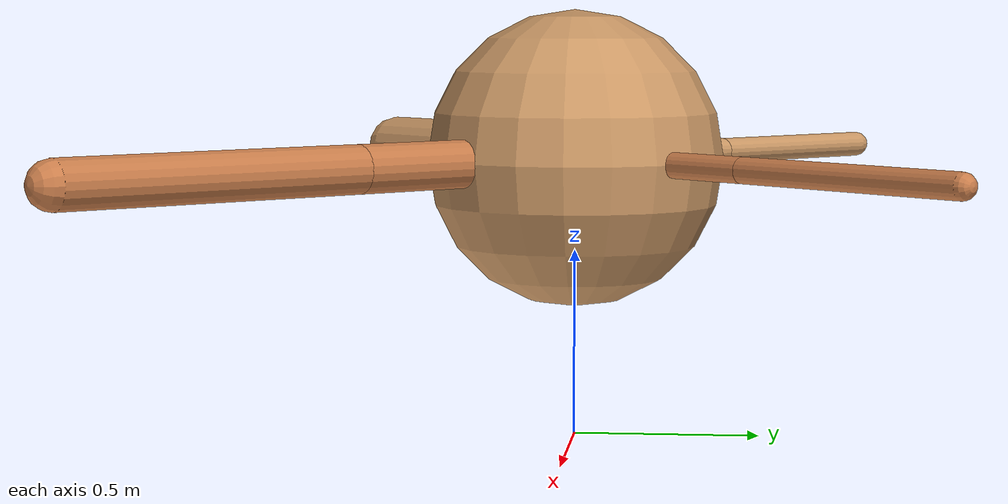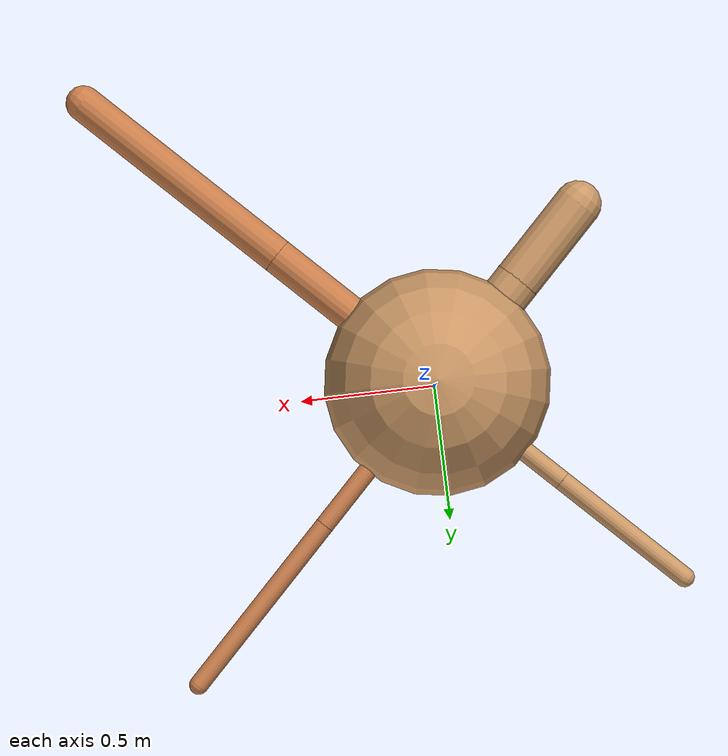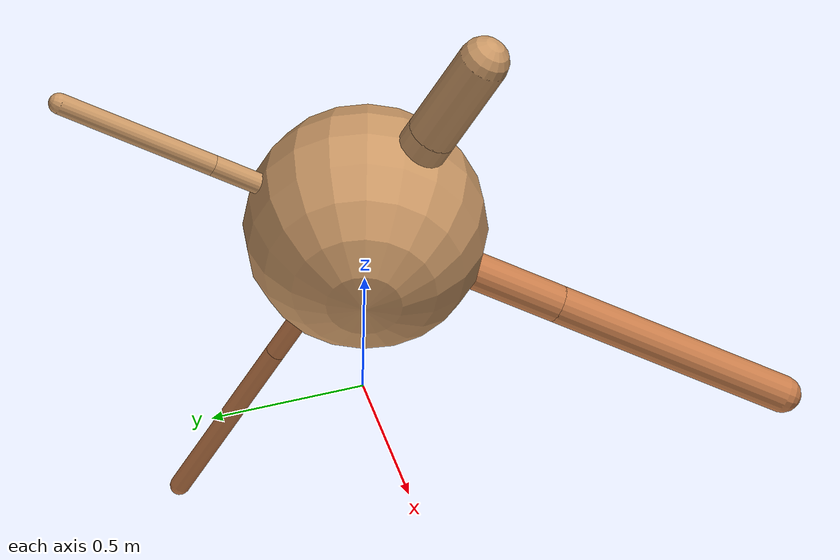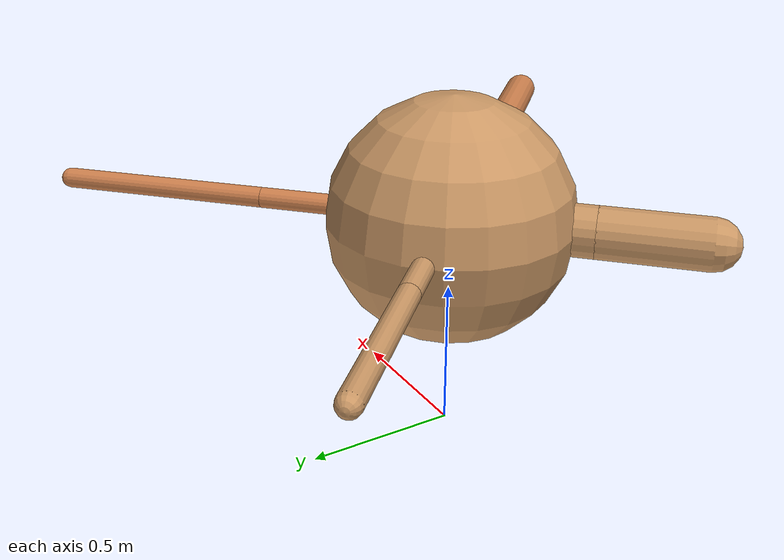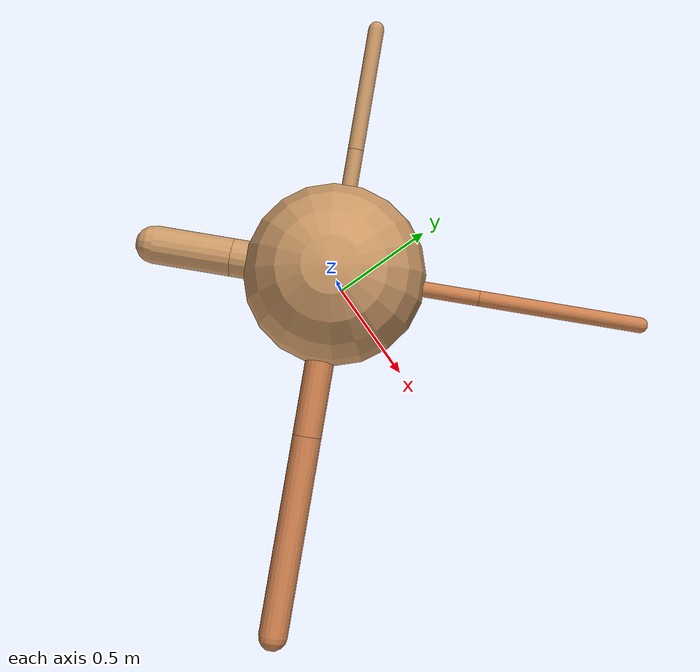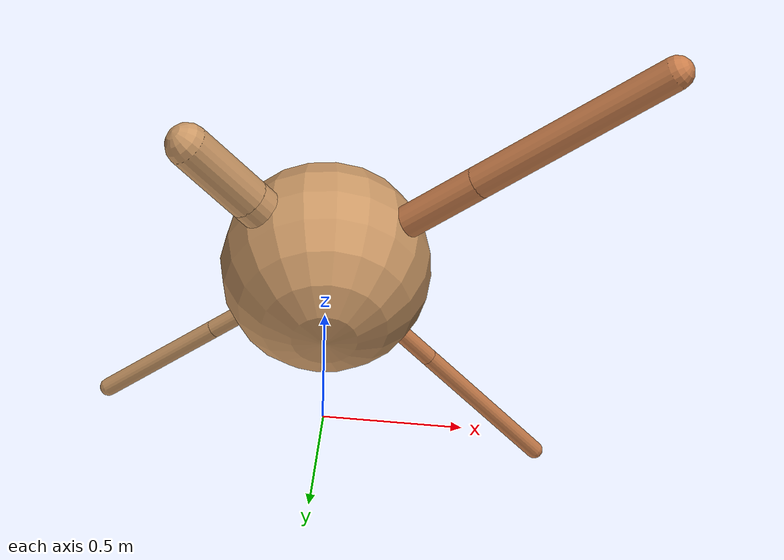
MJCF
<?xml version="1.0" ?>
<mujoco model="ant">

	<compiler angle="degree" coordinate="local" inertiafromgeom="true"/>

	<option integrator="RK4" timestep="0.01"/>

	<custom>

		<numeric data="0.0 0.0 0.55 1.0 0.0 0.0 0.0 0.0 1.0 0.0 -1.0 0.0 -1.0 0.0 1.0" name="init_qpos"/>

	</custom>

	<default>

		<joint armature="1" damping="1" limited="true"/>

		<geom conaffinity="0" condim="3" density="5.0" friction="1.5 0.1 0.1" margin="0.01" rgba="0.8 0.6 0.4 1"/>

	</default>

	<worldbody>

		<body name="torso" pos="0 0 0.75">

			<geom name="torso_geom" pos="0 0 0" size="0.40082405932974385" type="sphere"/>

			<!--joint armature="0" damping="0" limited="false" margin="0.01" name="root" pos="0 0 0" type="free"/-->

			<body name="front_left_leg" pos="0 0 0">

				<geom fromto="0 0 0 0.2 0.2 0" name="aux_1_geom" size="0.03407630548676842" type="capsule" rgba=".8 .5 .3 1"/>

				<body name="aux_1" pos="0.2 0.2 0">

					<joint axis="0 0 1" name="hip_1" pos="0.0 0.0 0.0" range="-40 40" type="hinge"/>

					<geom fromto="0 0 0 0.2521217602725546 0.2521217602725546 0" name="left_leg_geom" size="0.03407630548676842" type="capsule" rgba=".8 .5 .3 1"/>

					<body pos="0.2521217602725546 0.2521217602725546 0" name="front_left_foot">

						<joint axis="-1 1 0" name="ankle_1" pos="0.0 0.0 0.0" range="30 100" type="hinge"/>

						<geom fromto="0 0 0 0.5042435205451092 0.5042435205451092 0" name="left_ankle_geom" size="0.03407630548676842" type="capsule" rgba=".8 .5 .3 1"/>

					</body>

				</body>

			</body>

			<body name="front_right_leg" pos="0 0 0">

				<geom fromto="0 0 0 -0.2 0.2 0" name="aux_2_geom" size="0.034920664085967695" type="capsule"/>

				<body name="aux_2" pos="-0.2 0.2 0">

					<joint axis="0 0 1" name="hip_2" pos="0.0 0.0 0.0" range="-40 40" type="hinge"/>

					<geom fromto="0 0 0 -0.19398014302688674 0.19398014302688674 0" name="right_leg_geom" size="0.034920664085967695" type="capsule"/>

					<body pos="-0.19398014302688674 0.19398014302688674 0" name="front_right_foot">

						<joint axis="1 1 0" name="ankle_2" pos="0.0 0.0 0.0" range="-100 -30" type="hinge"/>

						<geom fromto="0 0 0 -0.3879602860537735 0.3879602860537735 0" name="right_ankle_geom" size="0.034920664085967695" type="capsule"/>

					</body>

				</body>

			</body>

			<body name="left_back_leg" pos="0 0 0">

				<geom fromto="0 0 0 -0.2 -0.2 0" name="aux_3_geom" size="0.08393590970868767" type="capsule"/>

				<body name="aux_3" pos="-0.2 -0.2 0">

					<joint axis="0 0 1" name="hip_3" pos="0.0 0.0 0.0" range="-40 40" type="hinge"/>

					<geom fromto="0 0 0 -0.12153272947041581 -0.12153272947041581 0" name="back_leg_geom" size="0.08393590970868767" type="capsule"/>

					<body pos="-0.12153272947041581 -0.12153272947041581 0" name="left_back_foot">

						<joint axis="-1 1 0" name="ankle_3" pos="0.0 0.0 0.0" range="-100 -30" type="hinge"/>

						<geom fromto="0 0 0 -0.24306545894083162 -0.24306545894083162 0" name="third_ankle_geom" size="0.08393590970868767" type="capsule"/>

					</body>

				</body>

			</body>

			<body name="right_back_leg" pos="0 0 0">

				<geom fromto="0 0 0 0.2 -0.2 0" name="aux_4_geom" size="0.06347868794892848" type="capsule" rgba=".8 .5 .3 1"/>

				<body name="aux_4" pos="0.2 -0.2 0">

					<joint axis="0 0 1" name="hip_4" pos="0.0 0.0 0.0" range="-40 40" type="hinge"/>

					<geom fromto="0 0 0 0.3071531519587851 -0.3071531519587851 0" name="rightback_leg_geom" size="0.06347868794892848" type="capsule" rgba=".8 .5 .3 1"/>

					<body pos="0.3071531519587851 -0.3071531519587851 0" name="right_back_foot">

						<joint axis="1 1 0" name="ankle_4" pos="0.0 0.0 0.0" range="30 100" type="hinge"/>

						<geom fromto="0 0 0 0.6143063039175702 -0.6143063039175702 0" name="fourth_ankle_geom" size="0.06347868794892848" type="capsule" rgba=".8 .5 .3 1"/>

					</body>

				</body>

			</body>

		</body>

	</worldbody>

	<actuator>

		<motor ctrllimited="true" ctrlrange="-1.0 1.0" joint="hip_4" gear="150"/>

		<motor ctrllimited="true" ctrlrange="-1.0 1.0" joint="ankle_4" gear="150"/>

		<motor ctrllimited="true" ctrlrange="-1.0 1.0" joint="hip_1" gear="150"/>

		<motor ctrllimited="true" ctrlrange="-1.0 1.0" joint="ankle_1" gear="150"/>

		<motor ctrllimited="true" ctrlrange="-1.0 1.0" joint="hip_2" gear="150"/>

		<motor ctrllimited="true" ctrlrange="-1.0 1.0" joint="ankle_2" gear="150"/>

		<motor ctrllimited="true" ctrlrange="-1.0 1.0" joint="hip_3" gear="150"/>

		<motor ctrllimited="true" ctrlrange="-1.0 1.0" joint="ankle_3" gear="150"/>

	</actuator>

</mujoco>
